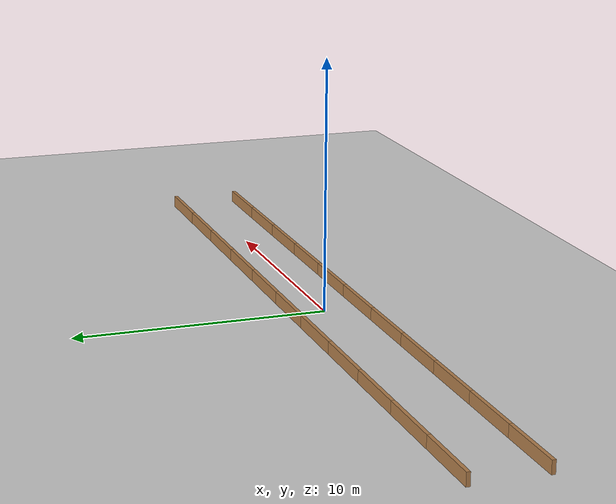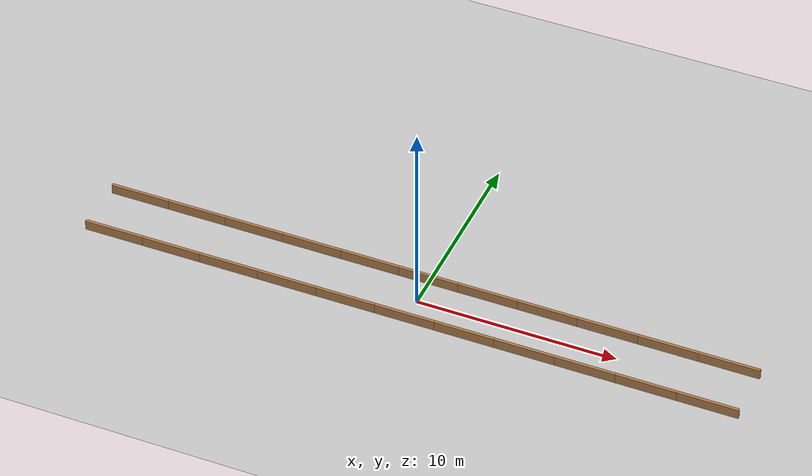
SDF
<sdf version="1.7">
 <world name="default">
  <include><uri>model://sun</uri></include>
  <include><uri>model://ground_plane</uri></include>
  <physics type="ode">
   <real_time_update_rate>1000.0</real_time_update_rate>
   <max_step_size>0.001</max_step_size>
   <real_time_factor>1</real_time_factor>
   <ode>
    <solver>
     <type>quick</type>
     <iters>150</iters>
     <precon_iters>0</precon_iters>
     <sor>1.400000</sor>
     <use_dynamic_moi_rescaling>1</use_dynamic_moi_rescaling>
    </solver>
    <constraints>
     <cfm>0.00001</cfm>
     <erp>0.2</erp>
     <contact_max_correcting_vel>2000.000000</contact_max_correcting_vel>
     <contact_surface_layer>0.01000</contact_surface_layer>
    </constraints>
   </ode>
  </physics>
  <include><uri>model://hallway_3</uri><name>hallway_3</name></include>
  <include><uri>model://hallway_3</uri><name>hallway_3_0</name><pose>3 0 0 0 -0 0</pose></include>
  <include><uri>model://hallway_3</uri><name>hallway_3_1</name><pose>-3 0 0 0 -0 0</pose></include>
  <include><uri>model://hallway_3</uri><name>hallway_3_2</name><pose>-6 0 0 0 -0 0</pose></include>
  <include><uri>model://hallway_3</uri><name>hallway_3_3</name><pose>6 0 0 0 -0 0</pose></include>
  <include><uri>model://hallway_3</uri><name>hallway_3_4</name><pose>-9 0 0 0 -0 0</pose></include>
  <include><uri>model://hallway_3</uri><name>hallway_3_5</name><pose>9 0 0 0 -0 0</pose></include>
  <include><uri>model://hallway_3</uri><name>hallway_3_6</name><pose>12 0 0 0 -0 0</pose></include>
  <include><uri>model://hallway_3</uri><name>hallway_3_7</name><pose>15 0 0 0 -0 0</pose></include>
  <include><uri>model://hallway_3</uri><name>hallway_3_8</name><pose>-12 0 0 0 -0 0</pose></include>
  <include><uri>model://hallway_3</uri><name>hallway_3_9</name><pose>-15 0 0 0 -0 0</pose></include>
  <scene><ambient>0.4 0.4 0.4 1</ambient><background>0.7 0.7 0.7 1</background><shadows>1</shadows></scene>
 </world>
</sdf>

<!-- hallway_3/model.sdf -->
<sdf version='1.6'>
  <model name='hallway_3'>
    <pose frame=''>0 0 0 0 -0 0</pose>
    <link name='Wall_0'>
      <collision name='Wall_0_Collision'>
        <geometry>
          <box>
            <size>3 0.15 0.5</size>
          </box>
        </geometry>
        <pose frame=''>0 0 0.25 0 -0 0</pose>
      </collision>
      <visual name='Wall_0_Visual'>
        <pose frame=''>0 0 0.25 0 -0 0</pose>
        <geometry>
          <box>
            <size>3 0.15 0.5</size>
          </box>
        </geometry>
        <material>
          <script>
            <uri>file://media/materials/scripts/gazebo.material</uri>
            <name>Gazebo/Wood</name>
          </script>
          <ambient>1 1 1 1</ambient>
        </material>
      </visual>
      <pose frame=''>0 1.425 0 0 -0 0</pose>
    </link>
    <link name='Wall_1'>
      <collision name='Wall_1_Collision'>
        <geometry>
          <box>
            <size>3 0.15 0.5</size>
          </box>
        </geometry>
        <pose frame=''>0 0 0.25 0 -0 0</pose>
      </collision>
      <visual name='Wall_1_Visual'>
        <pose frame=''>0 0 0.25 0 -0 0</pose>
        <geometry>
          <box>
            <size>3 0.15 0.5</size>
          </box>
        </geometry>
        <material>
          <script>
            <uri>file://media/materials/scripts/gazebo.material</uri>
            <name>Gazebo/Wood</name>
          </script>
          <ambient>1 1 1 1</ambient>
        </material>
      </visual>
      <pose frame=''>0 -1.425 0 0 -0 0</pose>
    </link>

    <static>1</static>
  </model>
</sdf>
